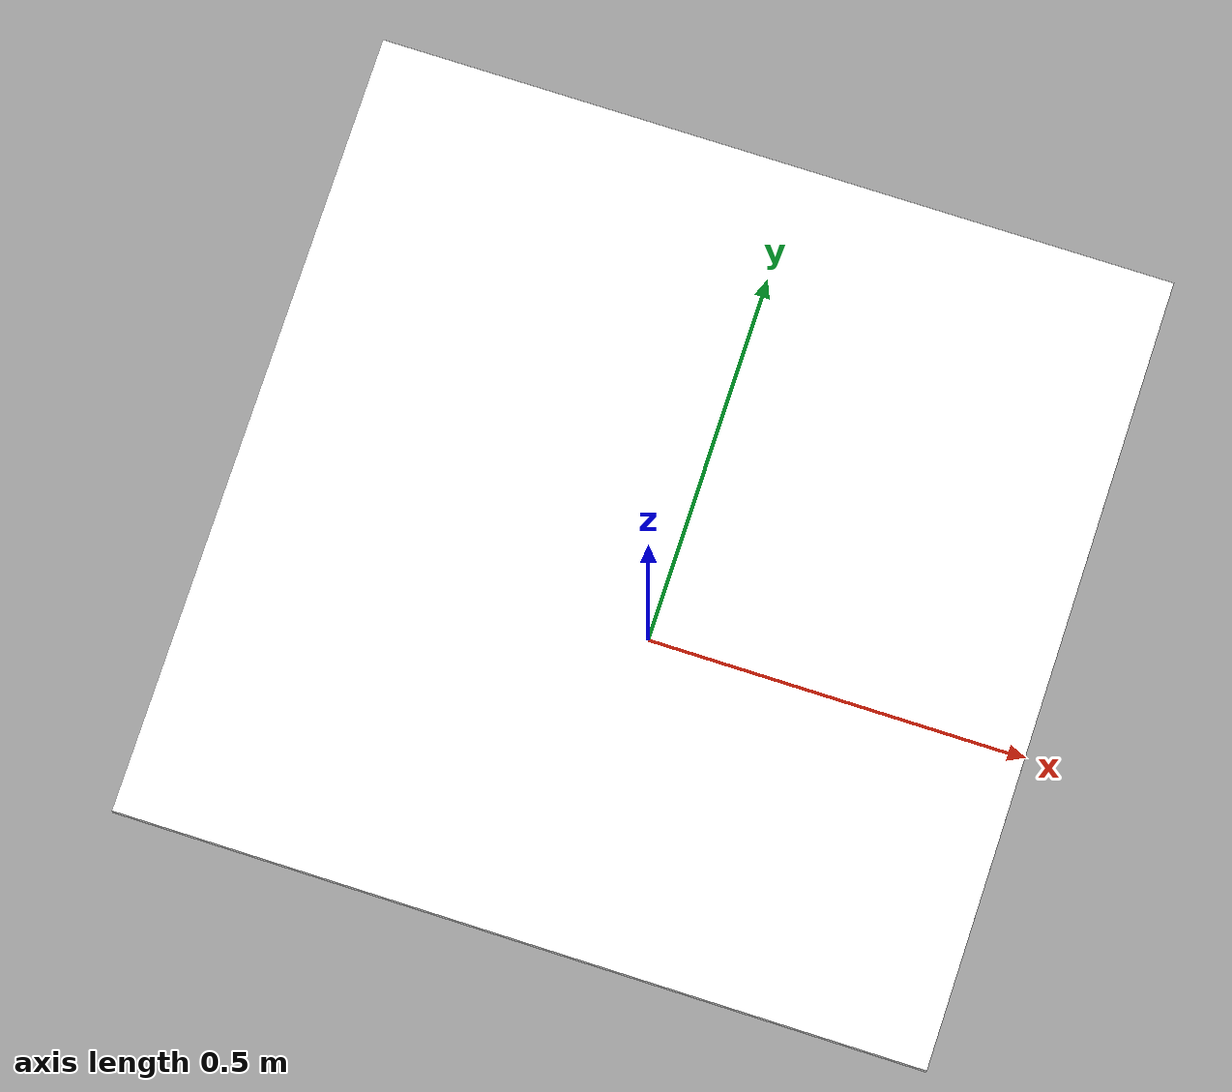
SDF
<?xml version="1.0"?>
<sdf version="1.4">
    <model name="aruco_box">
        <pose>0 0 0.5 0 0 0</pose> <!-- Position and orientation (X Y Z roll pitch yaw) -->
        <static>true</static>
        <link name="box_link">
            <pose>0 0 0 0 0 0</pose>

            <!-- Box geometry -->
            <collision name="box_collision">
                <geometry>
                    <box>
                        <size>1 1 0.01</size> <!-- Size of the box (X Y Z) -->
                    </box>
                </geometry>
            </collision>

            <visual name="box_visual">
                <geometry>
                    <box>
                        <size>1 1 0.01</size> <!-- Size of the box (X Y Z) -->
                    </box>
                </geometry>
                <material>
          <pbr>
            <metal>
              <albedo_map>materials/textures/marker_1_4_4_50.png</albedo_map>
            </metal>
          </pbr>
          <diffuse>1 1 1 1</diffuse>
        </material>
            </visual>

        </link>
    </model>
</sdf>
